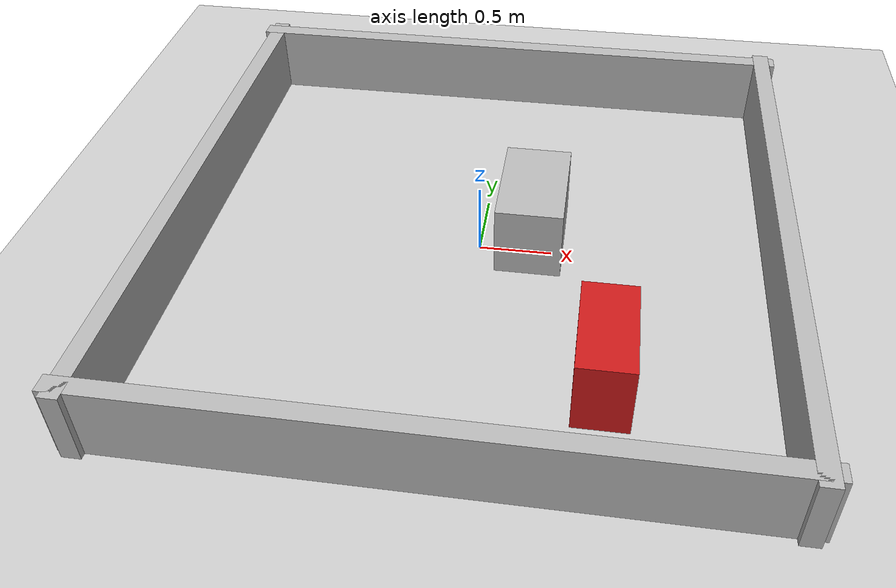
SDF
<?xml version="1.0"?>
<sdf version="1.6">
  <world name="goal_patience">
    <include>
      <uri>model://sun</uri>
    </include>
    <include>
      <uri>model://ground_plane</uri>
    </include>

    <model name="north_wall">
      <static>true</static>
      <pose>0 2 0.25 0 0 0</pose>
      <link name="link">
        <collision name="collision"><geometry><box><size>4.2 0.12 0.5</size></box></geometry></collision>
        <visual name="visual"><geometry><box><size>4.2 0.12 0.5</size></box></geometry></visual>
      </link>
    </model>
    <model name="south_wall">
      <static>true</static>
      <pose>0 -2 0.25 0 0 0</pose>
      <link name="link">
        <collision name="collision"><geometry><box><size>4.2 0.12 0.5</size></box></geometry></collision>
        <visual name="visual"><geometry><box><size>4.2 0.12 0.5</size></box></geometry></visual>
      </link>
    </model>
    <model name="east_wall">
      <static>true</static>
      <pose>2 0 0.25 0 0 0</pose>
      <link name="link">
        <collision name="collision"><geometry><box><size>0.12 4.2 0.5</size></box></geometry></collision>
        <visual name="visual"><geometry><box><size>0.12 4.2 0.5</size></box></geometry></visual>
      </link>
    </model>
    <model name="west_wall">
      <static>true</static>
      <pose>-2 0 0.25 0 0 0</pose>
      <link name="link">
        <collision name="collision"><geometry><box><size>0.12 4.2 0.5</size></box></geometry></collision>
        <visual name="visual"><geometry><box><size>0.12 4.2 0.5</size></box></geometry></visual>
      </link>
    </model>
    <model name="center_obstacle">
      <static>true</static>
      <pose>0.35 0.15 0.25 0 0 0</pose>
      <link name="link">
        <collision name="collision"><geometry><box><size>0.45 0.75 0.5</size></box></geometry></collision>
        <visual name="visual"><geometry><box><size>0.45 0.75 0.5</size></box></geometry></visual>
      </link>
    </model>

    <model name="unmapped_goal_obstacle">
      <static>true</static>
      <pose>0.9 -1.15 0.25 0 0 0</pose>
      <link name="link">
        <collision name="collision">
          <geometry><box><size>0.35 0.70 0.5</size></box></geometry>
        </collision>
        <visual name="visual">
          <geometry><box><size>0.35 0.70 0.5</size></box></geometry>
          <material>
            <ambient>0.8 0.1 0.1 1</ambient>
            <diffuse>0.8 0.1 0.1 1</diffuse>
          </material>
        </visual>
      </link>
    </model>
  </world>
</sdf>
